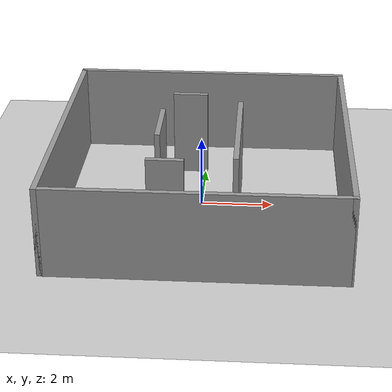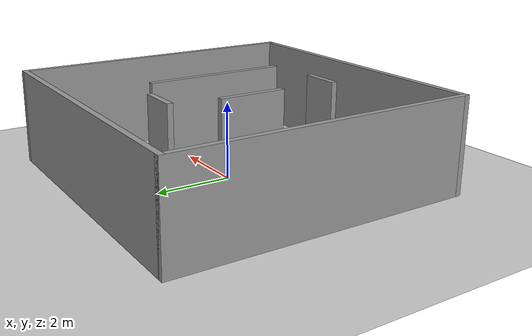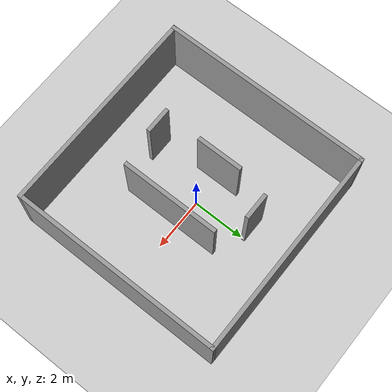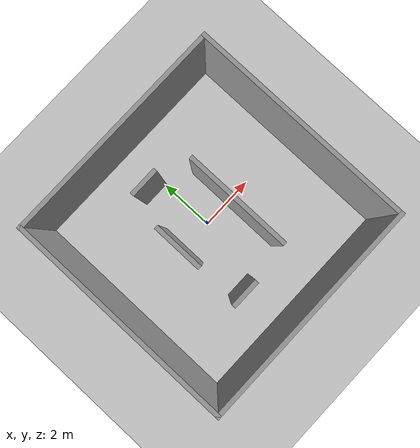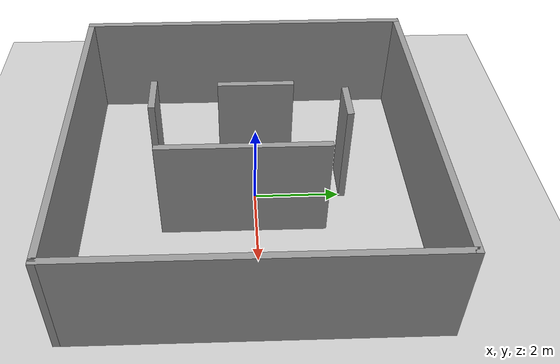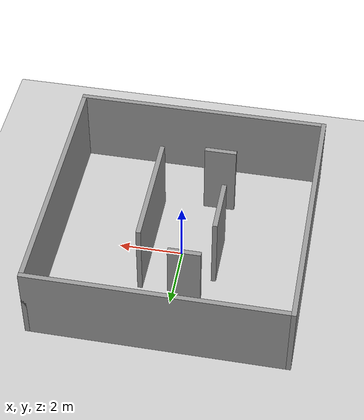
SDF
<sdf version="1.6">
 <world name="default">
  <light name="sun" type="directional">
   <pose>0 0 10 0 -0 0</pose>
   <diffuse>0.8 0.8 0.8 1</diffuse>
   <specular>0.2 0.2 0.2 1</specular>
   <attenuation>
    <range>1000</range>
    <constant>0.9</constant>
    <linear>0.01</linear>
    <quadratic>0.001</quadratic>
   </attenuation>
   <direction>-0.5 0.1 -0.9</direction>
  </light>
  <model name="ground_plane">
   <static>1</static>
   <link name="link">
    <collision name="collision">
     <geometry><plane><normal>0 0 1</normal><size>100 100</size></plane></geometry>
     <surface>
      <contact><collide_bitmask>65535</collide_bitmask></contact>
      <friction><ode><mu>100</mu><mu2>50</mu2></ode></friction>
     </surface>
    </collision>
    <visual name="visual">
     <cast_shadows>0</cast_shadows>
     <geometry><plane><normal>0 0 1</normal><size>100 100</size></plane></geometry>
     <material>
      <script><uri>file://media/materials/scripts/gazebo.material</uri><name>Gazebo/Grey</name></script>
     </material>
    </visual>
   </link>
  </model>
  <gravity>0 0 -9.8</gravity>
  <magnetic_field>6e-06 2.3e-05 -4.2e-05</magnetic_field>
  <atmosphere type="adiabatic"/>
  <physics name="default_physics" default="0" type="ode">
   <max_step_size>0.001</max_step_size>
   <real_time_factor>1</real_time_factor>
   <real_time_update_rate>1000</real_time_update_rate>
  </physics>
  <scene><ambient>0.4 0.4 0.4 1</ambient><background>0.7 0.7 0.7 1</background><shadows>1</shadows></scene>
  <spherical_coordinates>
   <surface_model>EARTH_WGS84</surface_model>
   <latitude_deg>0</latitude_deg>
   <longitude_deg>0</longitude_deg>
   <elevation>0</elevation>
   <heading_deg>0</heading_deg>
  </spherical_coordinates>
  <model name="train_env3">
   <pose>0.060583 -0.131022 0 0 -0 0</pose>
   <link name="Wall_0">
    <collision name="Wall_0_Collision">
     <geometry><box><size>8 0.15 2.5</size></box></geometry>
     <pose>0 0 1.25 0 -0 0</pose>
    </collision>
    <visual name="Wall_0_Visual">
     <pose>0 0 1.25 0 -0 0</pose>
     <geometry><box><size>8 0.15 2.5</size></box></geometry>
     <material>
      <script><uri>file://media/materials/scripts/gazebo.material</uri><name>Gazebo/Grey</name></script>
      <ambient>1 1 1 1</ambient>
     </material>
     <meta><layer>0</layer></meta>
    </visual>
    <pose>0 -3.925 0 0 -0 0</pose>
   </link>
   <link name="Wall_10">
    <collision name="Wall_10_Collision">
     <geometry><box><size>3.75 0.15 2.5</size></box></geometry>
     <pose>0 0 1.25 0 -0 0</pose>
    </collision>
    <visual name="Wall_10_Visual">
     <pose>0 0 1.25 0 -0 0</pose>
     <geometry><box><size>3.75 0.15 2.5</size></box></geometry>
     <material>
      <script><uri>file://media/materials/scripts/gazebo.material</uri><name>Gazebo/Grey</name></script>
      <ambient>1 1 1 1</ambient>
     </material>
     <meta><layer>0</layer></meta>
    </visual>
    <pose>0.963476 -0.154547 0 0 -0 -1.5708</pose>
   </link>
   <link name="Wall_12">
    <collision name="Wall_12_Collision">
     <geometry><box><size>1 0.15 2.5</size></box></geometry>
     <pose>0 0 1.25 0 -0 0</pose>
    </collision>
    <visual name="Wall_12_Visual">
     <pose>0 0 1.25 0 -0 0</pose>
     <geometry><box><size>1 0.15 2.5</size></box></geometry>
     <material>
      <script><uri>file://media/materials/scripts/gazebo.material</uri><name>Gazebo/Grey</name></script>
      <ambient>1 1 1 1</ambient>
     </material>
     <meta><layer>0</layer></meta>
    </visual>
    <pose>-0.512936 2.21183 0 0 -0 0</pose>
   </link>
   <link name="Wall_14">
    <collision name="Wall_14_Collision">
     <geometry><box><size>1 0.15 2.5</size></box></geometry>
     <pose>0 0 1.25 0 -0 0</pose>
    </collision>
    <visual name="Wall_14_Visual">
     <pose>0 0 1.25 0 -0 0</pose>
     <geometry><box><size>1 0.15 2.5</size></box></geometry>
     <material>
      <script><uri>file://media/materials/scripts/gazebo.material</uri><name>Gazebo/Grey</name></script>
      <ambient>1 1 1 1</ambient>
     </material>
     <meta><layer>0</layer></meta>
    </visual>
    <pose>-0.877036 -2.15737 0 0 -0 0</pose>
   </link>
   <link name="Wall_2">
    <collision name="Wall_2_Collision">
     <geometry><box><size>8 0.15 2.5</size></box></geometry>
     <pose>0 0 1.25 0 -0 0</pose>
    </collision>
    <visual name="Wall_2_Visual">
     <pose>0 0 1.25 0 -0 0</pose>
     <geometry><box><size>8 0.15 2.5</size></box></geometry>
     <material>
      <script><uri>file://media/materials/scripts/gazebo.material</uri><name>Gazebo/Grey</name></script>
      <ambient>1 1 1 1</ambient>
     </material>
     <meta><layer>0</layer></meta>
    </visual>
    <pose>-3.925 0 0 0 -0 1.5708</pose>
   </link>
   <link name="Wall_3">
    <collision name="Wall_3_Collision">
     <geometry><box><size>8 0.15 2.5</size></box></geometry>
     <pose>0 0 1.25 0 -0 0</pose>
    </collision>
    <visual name="Wall_3_Visual">
     <pose>0 0 1.25 0 -0 0</pose>
     <geometry><box><size>8 0.15 2.5</size></box></geometry>
     <material>
      <script><uri>file://media/materials/scripts/gazebo.material</uri><name>Gazebo/Grey</name></script>
      <ambient>1 1 1 1</ambient>
     </material>
     <meta><layer>0</layer></meta>
    </visual>
    <pose>0 3.925 0 0 -0 0</pose>
   </link>
   <link name="Wall_4">
    <collision name="Wall_4_Collision">
     <geometry><box><size>8 0.15 2.5</size></box></geometry>
     <pose>0 0 1.25 0 -0 0</pose>
    </collision>
    <visual name="Wall_4_Visual">
     <pose>0 0 1.25 0 -0 0</pose>
     <geometry><box><size>8 0.15 2.5</size></box></geometry>
     <material>
      <script><uri>file://media/materials/scripts/gazebo.material</uri><name>Gazebo/Grey</name></script>
      <ambient>1 1 1 1</ambient>
     </material>
     <meta><layer>0</layer></meta>
    </visual>
    <pose>3.925 0 0 0 -0 -1.5708</pose>
   </link>
   <link name="Wall_7">
    <collision name="Wall_7_Collision">
     <geometry><box><size>1.75 0.15 2.5</size></box></geometry>
     <pose>0 0 1.25 0 -0 0</pose>
    </collision>
    <visual name="Wall_7_Visual">
     <pose>0 0 1.25 0 -0 0</pose>
     <geometry><box><size>1.75 0.15 2.5</size></box></geometry>
     <material>
      <script><uri>file://media/materials/scripts/gazebo.material</uri><name>Gazebo/Grey</name></script>
      <ambient>1 1 1 1</ambient>
     </material>
     <meta><layer>0</layer></meta>
    </visual>
    <pose>-1.22113 0.179941 0 0 -0 1.5708</pose>
   </link>
   <static>1</static>
  </model>
 </world>
</sdf>
